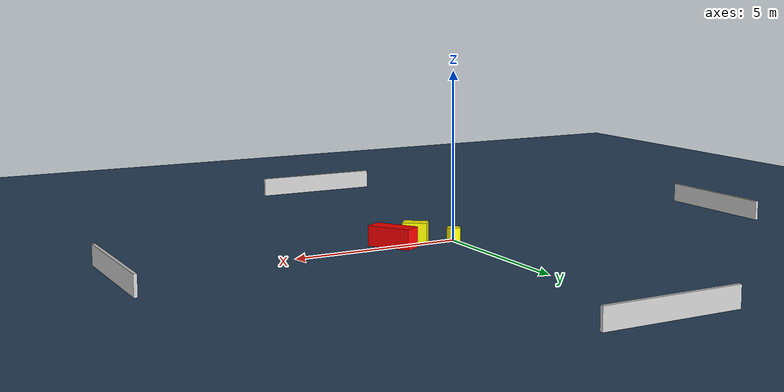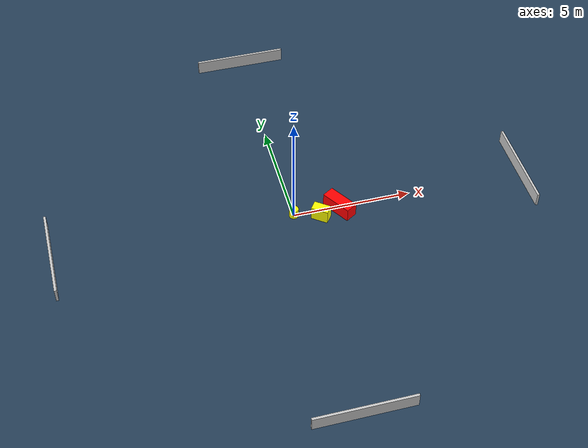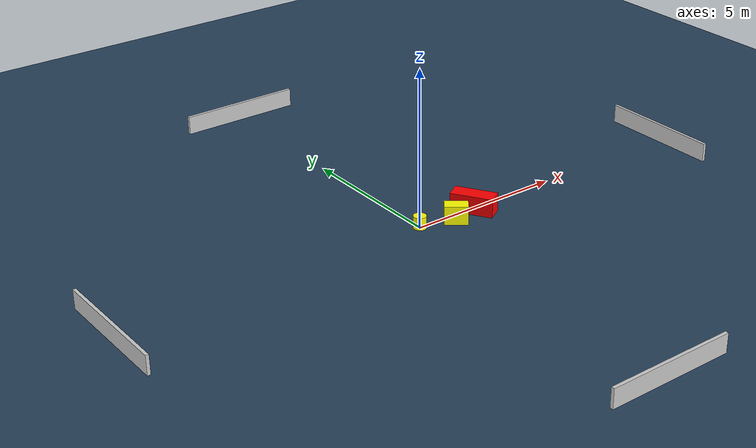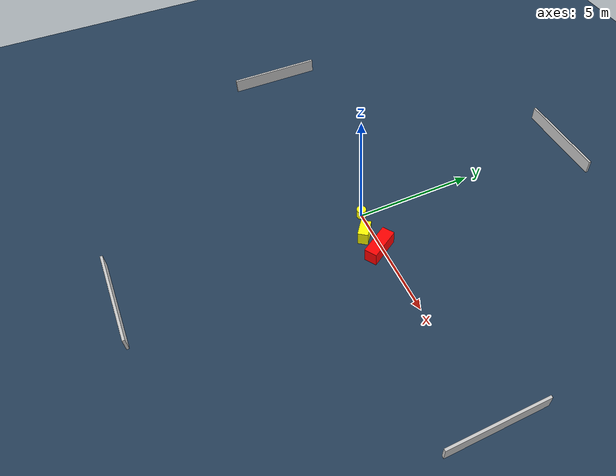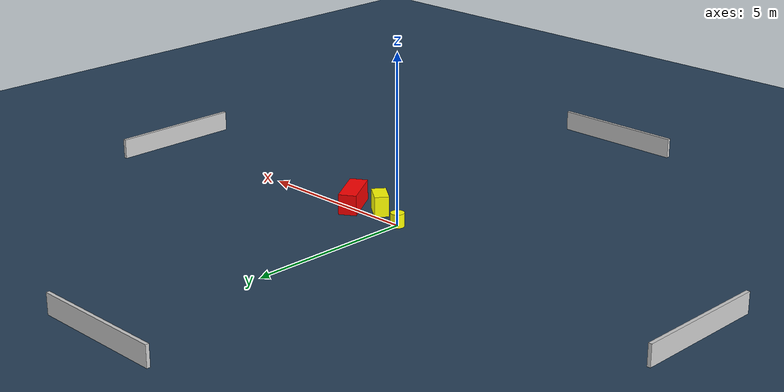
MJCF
<?xml version="1.0" ?>
<mujoco model="generated_environment">
  <option timestep="0.01" integrator="RK4" cone="elliptic"/>
  <default>
    <geom density="1"/>
  </default>
  <asset>
    <texture builtin="gradient" height="3072" name="skybox" rgb1="0.3 0.5 0.7" rgb2="0 0 0" type="skybox" width="512"/>
    <texture builtin="checker" height="300" name="groundplane" rgb1="0.2 0.3 0.4" rgb2="0.1 0.2 0.3" type="2d" width="300"/>
    <material name="groundplane" reflectance="0.2" texrepeat="5 5" texture="groundplane"/>
  </asset>
  <worldbody>
    <light dir="0 0 -1" directional="true" pos="0 0 1.5"/>
    <geom condim="3" friction="0.5 0.005 0.001" material="groundplane" name="floor" pos="0 0 0" size="0 0 0.05" type="plane"/>
    <body name="walls">
      <geom name="wall_1" condim="4" pos="-10.0 0.0 0.3" rgba="0.800000011920929 0.800000011920929 0.800000011920929 1.0" size="0.05 2.0 0.3" type="box"/>
      <geom name="wall_2" condim="4" pos="10.0 0.0 0.3" rgba="0.800000011920929 0.800000011920929 0.800000011920929 1.0" size="0.05 2.0 0.3" type="box"/>
      <geom name="wall_3" condim="4" pos="0.0 -10.0 0.3" rgba="0.800000011920929 0.800000011920929 0.800000011920929 1.0" size="2.0 0.05 0.3" type="box"/>
      <geom name="wall_4" condim="4" pos="0.0 10.0 0.3" rgba="0.800000011920929 0.800000011920929 0.800000011920929 1.0" size="2.0 0.05 0.3" type="box"/>
    </body>
    <body name="robot">
      <joint name="joint_x" type="slide" pos="0 0 0" axis="1 0 0"/>
      <joint name="joint_y" type="slide" pos="0 0 0" axis="0 1 0"/>
      <geom name="robot" type="cylinder" pos="0.0 0.0 0.2" size="0.2 0.2 0.0" mass="5.0" friction="1.0 0.005 0.0001" condim="4" rgba="1.0 1.0 0.0 1.0"/>
    </body>
    <body name="obstacle_1_movable">
      <geom name="obstacle_1_movable" condim="4" pos="1.067682959595828 -0.3755487489316098 0.3" euler="0 0 233.28905976901044" friction="0.0 0.005 0.001" rgba="1.0 1.0 0.0 1.0" size="0.2102749414328254 0.3614619074187444 0.3" type="box" mass="0.1"/>
      <joint type="free"/>
    </body>
    <body name="obstacle_2_static">
      <geom name="obstacle_2_static" condim="4" pos="1.9318530035560857 -0.1445086721695418 0.3" euler="0 0 31.832465700481563" friction="0.0 0.005 0.001" rgba="1.0 0.0 0.0 1.0" size="0.263615782690824 0.6728311994828502 0.3" type="box"/>
    </body>
  </worldbody>
  <actuator>
    <motor name="actuator_x" joint="joint_x" gear="1" ctrlrange="-1 1"/>
    <motor name="actuator_y" joint="joint_y" gear="1" ctrlrange="-1 1"/>
  </actuator>
</mujoco>
